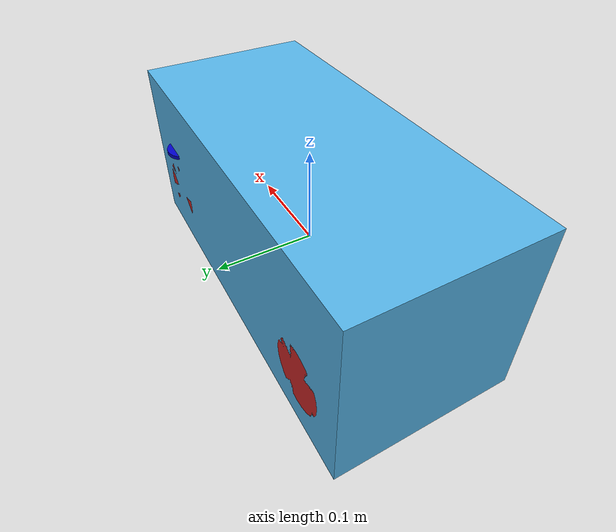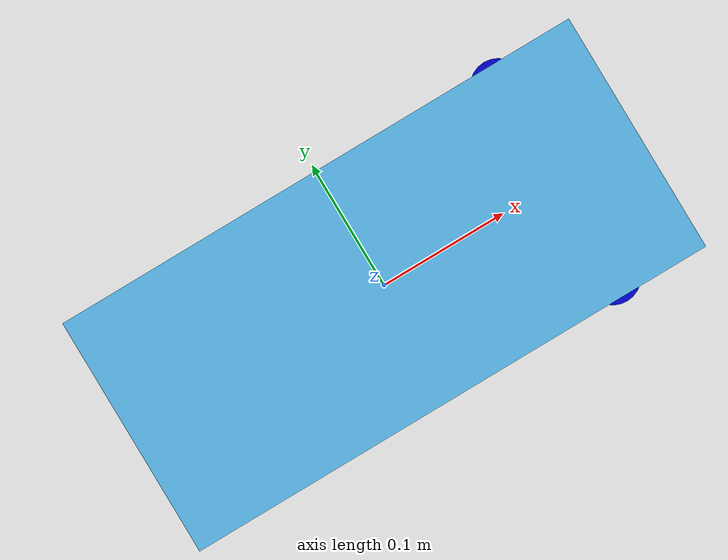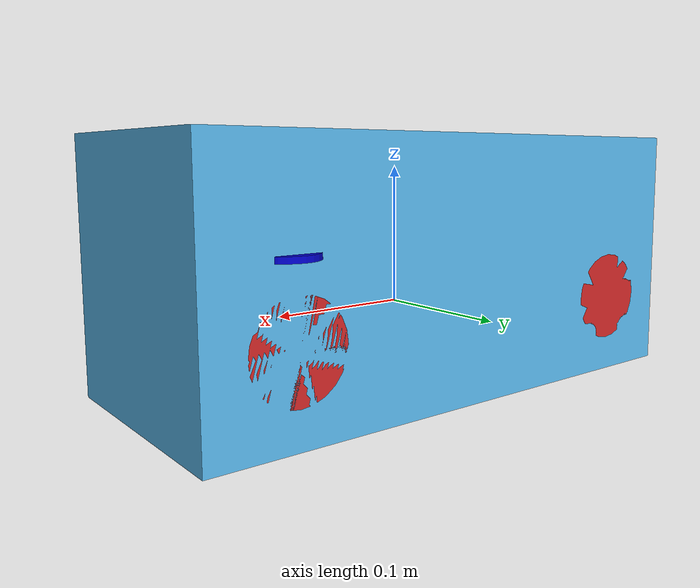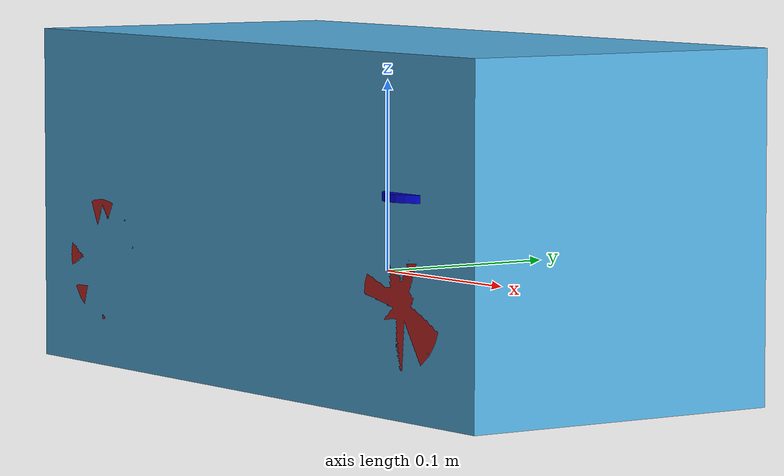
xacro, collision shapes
<?xml version="1.0"?>
<robot name="car" xmlns:xacro="http://wiki.ros.org/xacro">
  <!-- Include xacro for inertials, materials and wheels -->
  <xacro:include filename="$(find robot_description)/urdf/wheel.xacro"/>
  <xacro:include filename="$(find robot_description)/urdf/car_gazebo.xacro" />

  <xacro:property name="robot_namespace" value="/car"/>

  <!-- Math constants -->
  <xacro:property name="deg_to_rad" value="0.01745329251994329577"/>

  <!-- Robot dimensions -->
  <xacro:property name="car_length" value="0.4" />
  <xacro:property name="car_width" value="0.18" />
  <xacro:property name="car_height" value="0.18" />
  <xacro:property name="car_mass" value="2" />

  <!-- Wheel link dimensions -->
  <xacro:property name="wheel_radius" value="0.0325" />
  <xacro:property name="wheel_thickness" value="0.025" />
  <xacro:property name="wheel_mass" value="0.00355" />

  <!-- Steering link dimensions -->
  <xacro:property name="steer_radius" value="0.02" />
  <xacro:property name="steer_thickness" value="0.004" />
  <xacro:property name="steer_mass" value="0.0008" />

  <!-- Axle positions -->
  <xacro:property name="axle_offset" value="0.14" />
  <xacro:property name="steer_offset" value="0.02" />

  <xacro:macro name="dummy_visual">
    <visual>
      <geometry>
        <box size =".001 .001 .001"/>
      </geometry>
      <xacro:default_origin />
    </visual>
  </xacro:macro>

  <xacro:macro name="default_origin">
       <origin xyz="0 0 0" rpy="0 0 0"/>
  </xacro:macro>

  <!-- Base link -->
  <link name="base_link">
    <collision>
        <xacro:default_origin />
        <geometry>
            <box size="0.001 0.001 0.001"/>
        </geometry>
    </collision>

    <xacro:dummy_visual />
  </link>

  <link name="body">
    <inertial>
      <origin xyz="0.7 0 0.043" rpy="0 0 0"/>
      <mass value="${car_mass}" />
      <inertia ixx="0.0332083" ixy="0.0" ixz="0.0" iyy="0.01302083" iyz="0.0" izz="0.03685416"/>
    </inertial>

    <collision>
        <xacro:default_origin />
        <geometry>
            <box size="${car_length} ${car_width} ${car_height}"/>
        </geometry>
    </collision>

    <visual>
      <geometry>
        <!--Dimensions: 37x20xheight   height may very depending on components, should be ~20cm-->
        <mesh filename="package://robot_description/models/car_robot/meshes/car.dae"/>
      </geometry>
      <xacro:default_origin />
    </visual>
  </link>

  <joint name="base_link_to_body" type="fixed">
    <parent link="base_link"/>
    <child link="body"/>
    <origin xyz="0 0 ${wheel_radius}"/>
    <axis   xyz="0 1 0"/>
  </joint>

  <!-- Front steer and rear wheel joints required for ackermann_steering_controller -->
  <xacro:front_steer
    name="front"
    parent="base"
    steer_radius="${steer_radius}"
    steer_thickness="${steer_thickness}"
    steer_mass="${steer_mass}"
    axle_offset="${axle_offset}"
    steer_height="${wheel_radius+steer_offset}">
  </xacro:front_steer>

  <!-- Steerable front side wheels -->
  <xacro:front_wheel_lr
    name="front_right"
    parent="base"
    reflect="-1"
    wheel_radius="${wheel_radius}"
    wheel_thickness="${wheel_thickness}"
    wheel_mass="${wheel_mass}"
    wheel_is_right="1"
    steer_radius="${steer_radius}"
    steer_thickness="${steer_thickness}"
    steer_mass="${steer_mass}"
    car_length="${car_length}"
    car_width="${car_width}"
    axle_offset="${axle_offset}"
    steer_height="${wheel_radius+steer_offset}">
  </xacro:front_wheel_lr>
  <xacro:front_wheel_lr
    name="front_left"
    parent="base"
    reflect="1"
    wheel_radius="${wheel_radius}"
    wheel_thickness="${wheel_thickness}"
    wheel_mass="${wheel_mass}"
    wheel_is_right="0"
    steer_radius="${steer_radius}"
    steer_thickness="${steer_thickness}"
    steer_mass="${steer_mass}"
    car_length="${car_length}"
    car_width="${car_width}"
    axle_offset="${axle_offset}"
    steer_height="${wheel_radius+steer_offset}">
  </xacro:front_wheel_lr>

  <!-- Rear side wheels -->
  <xacro:rear_wheel_lr
    name="rear_right"
    parent="base"
    wheel_radius="${wheel_radius}"
    wheel_thickness="${wheel_thickness}"
    wheel_mass="${wheel_mass}"
    wheel_is_right="1">
    <origin xyz="${-axle_offset} ${-car_width/2+wheel_thickness/2} 0" rpy="${-90 * deg_to_rad} 0 0"/>
  </xacro:rear_wheel_lr>
  <xacro:rear_wheel_lr
    name="rear_left"
    parent="base"
    wheel_radius="${wheel_radius}"
    wheel_thickness="${wheel_thickness}"
    wheel_mass="${wheel_mass}"
    wheel_is_right="0">
    <origin xyz="${-axle_offset} ${+car_width/2-wheel_thickness/2} 0" rpy="${-90 * deg_to_rad} 0 0"/>
  </xacro:rear_wheel_lr>

  <!-- rear drive wheel -->
  <xacro:rear_wheel
    name="rear"
    parent="base"
    wheel_radius="${wheel_radius/4}"
    wheel_thickness="${wheel_thickness/2}"
    wheel_mass="${wheel_mass/32}">
    <origin xyz="${-axle_offset} 0 0" rpy="${-90 * deg_to_rad} 0 0"/>
  </xacro:rear_wheel>

  <!-- Colour -->
  <gazebo reference="base_link">
    <material>Gazebo/Green</material>
  </gazebo>

</robot>

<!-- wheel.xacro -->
<robot name="wheel" xmlns:xacro="http://wiki.ros.org/xacro">
  <!-- Include xacro for materials and inertials -->
  <xacro:include filename="$(find robot_description)/urdf/materials.xacro"/>
  <xacro:include filename="$(find robot_description)/urdf/inertials.xacro"/>

  <!-- Math constants -->
  <xacro:property name="deg_to_rad" value="0.01745329251994329577"/>

  <!-- Properties -->
  <xacro:property name="steer_effort" value="10.0"/>
  <xacro:property name="steer_velocity" value="5.0"/>
  <xacro:property name="steer_limit_deg" value="45.0"/>

  <!-- Wheel visualization macro -->
  <xacro:macro name="wheel_visual" params="roll">
    <visual>
      <geometry>
        <mesh filename="package://robot_description/models/car_robot/meshes/wheel.dae"/>
      </geometry>
      <origin xyz="0 0 0" rpy="${roll} 0 0"/>
    </visual>
  </xacro:macro>

  <!-- Steering wheel -->
  <xacro:macro name="front_steer"
    params="
      name
      parent
      steer_radius
      steer_thickness
      steer_mass
      axle_offset
      steer_height">
    <link name="${name}_steer_link">
      <visual>
        <origin xyz="0 0 0" rpy="0 0 0"/>
        <geometry>
          <cylinder radius="${steer_radius}" length="${steer_thickness}"/>
        </geometry>
        <material name="steering_wheel" />
      </visual>
      <collision>
        <origin xyz="0 0 0" rpy="0 0 0"/>
        <geometry>
          <cylinder radius="${steer_radius}" length="${steer_thickness}"/>
        </geometry>
      </collision>
      <xacro:solid_cylinder_inertial
          rpy="0 0 0" xyz="0 0 0"
          mass="${steer_mass}"
          radius="${steer_radius}" length="${steer_thickness}" />
    </link>

    <joint name="${name}_steer_joint" type="revolute">
      <parent link="${parent}_link"/>
      <child link="${name}_steer_link"/>
      <origin xyz="${axle_offset} 0 ${steer_height}" rpy="0 0 0"/>
      <axis xyz="0 0 1"/>
      <limit effort="${steer_effort}"
             lower="${-180.0 * deg_to_rad}" upper="${180.0 * deg_to_rad}"
             velocity="${steer_velocity}"/>
    </joint>

    <transmission name="${name}_steer_joint_trans">
      <type>transmission_interface/SimpleTransmission</type>
      <actuator name="${name}_steer_joint_motor">
        <mechanicalReduction>1</mechanicalReduction>
        <hardwareInterface>hardware_interface/PositionJointInterface</hardwareInterface>
      </actuator>
      <joint name="${name}_steer_joint">
        <hardwareInterface>hardware_interface/PositionJointInterface</hardwareInterface>
      </joint>
    </transmission>

    <gazebo reference="${name}_steer_link">
      <material>Gazebo/Yellow</material>
    </gazebo>
  </xacro:macro>

  <!-- STEERING -->

  <!-- Car steering model front (steerable) wheel links (left/right) -->
  <xacro:macro name="front_wheel_lr"
    params="
      name
      parent
      reflect
      wheel_radius
      wheel_thickness
      wheel_mass
      wheel_is_right
      steer_radius
      steer_thickness
      steer_mass
      car_length
      car_width
      axle_offset
      steer_height">
    <link name="${name}_steer_link">
      <visual>
        <origin xyz="0 0 0" rpy="0 0 0"/>
        <geometry>
          <cylinder radius="${steer_radius}" length="${steer_thickness}"/>
        </geometry>
        <material name="blue" />
      </visual>
      <collision>
        <origin xyz="0 0 0" rpy="0 0 0"/>
        <geometry>
          <cylinder radius="${steer_radius}" length="${steer_thickness}"/>
        </geometry>
      </collision>
      <xacro:solid_cylinder_inertial
          rpy="0 0 0" xyz="0 0 0"
          mass="${steer_mass}"
          radius="${steer_radius}" length="${steer_thickness}" />
    </link>

    <joint name="${name}_steer_joint" type="revolute">
      <parent link="${parent}_link"/>
      <child link="${name}_steer_link"/>
      <origin xyz="${axle_offset} ${reflect*(car_width/2-wheel_thickness/2)} ${steer_height}" rpy="0 0 0"/>
      <axis xyz="0 0 1"/>
      <limit effort="${steer_effort}"
             lower="${steer_limit_deg * deg_to_rad * -1.0}" upper="${steer_limit_deg * deg_to_rad}"
             velocity="${steer_velocity}"/>
    </joint>

    <link name="${name}_wheel_link">
      <xacro:wheel_visual roll="${wheel_is_right*180*deg_to_rad}"/>
      <collision>
        <origin xyz="0 0 0" rpy="${wheel_is_right*180*deg_to_rad} 0 0"/>
        <geometry>
          <cylinder radius="${wheel_radius}" length="${wheel_thickness}"/>
        </geometry>
      </collision>
      <xacro:solid_cylinder_inertial
          rpy="${wheel_is_right*180*deg_to_rad} 0 0" xyz="0 0 0"
          mass="${wheel_mass}"
          radius="${wheel_radius}" length="${wheel_thickness}" />
    </link>

    <joint name="${name}_wheel_joint" type="continuous">
      <parent link="${name}_steer_link"/>
      <child link="${name}_wheel_link"/>
      <origin xyz="0 0 ${-steer_height}" rpy="${-90 * deg_to_rad} 0 0"/>
      <axis xyz="0 0 1"/>
    </joint>

    <transmission name="${name}_steer_joint_trans">
      <type>transmission_interface/SimpleTransmission</type>
      <actuator name="${name}_steer_joint_motor">
        <mechanicalReduction>1</mechanicalReduction>
        <hardwareInterface>hardware_interface/PositionJointInterface</hardwareInterface>
      </actuator>
      <joint name="${name}_steer_joint">
        <hardwareInterface>hardware_interface/PositionJointInterface</hardwareInterface>
      </joint>
    </transmission>

    <transmission name="${name}_wheel_joint_trans">
      <type>transmission_interface/SimpleTransmission</type>
      <actuator name="${name}_wheel_joint_motor">
        <mechanicalReduction>1</mechanicalReduction>
        <hardwareInterface>hardware_interface/VelocityJointInterface</hardwareInterface>
      </actuator>
      <joint name="${name}_wheel_joint">
        <hardwareInterface>hardware_interface/VelocityJointInterface</hardwareInterface>
      </joint>
    </transmission>

    <gazebo reference="${name}_steer_link">
      <material>Gazebo/Blue</material>
    </gazebo>

    <gazebo reference="${name}_wheel_link">
      <material>Gazebo/Red</material>
    </gazebo>
  </xacro:macro>

  <!-- Car steering model rear wheel links (left/right) -->
  <xacro:macro name="rear_wheel_lr"
    params="
      name
      parent
      wheel_radius
      wheel_thickness
      wheel_mass
      wheel_is_right
      *origin">
    <link name="${name}_wheel_link">
      <xacro:wheel_visual roll="${wheel_is_right*180*deg_to_rad}"/>
      <collision>
        <origin xyz="0 0 0" rpy="${wheel_is_right*180*deg_to_rad} 0 0"/>
        <geometry>
          <cylinder radius="${wheel_radius}" length="${wheel_thickness}"/>
        </geometry>
      </collision>
      <xacro:solid_cylinder_inertial
          rpy="${wheel_is_right*180*deg_to_rad} 0 0" xyz="0 0 0"
          mass="${wheel_mass}"
          radius="${wheel_radius}" length="${wheel_thickness}" />
    </link>

    <joint name="${name}_wheel_joint" type="continuous">
      <parent link="${parent}_link"/>
      <child link="${name}_wheel_link"/>
      <xacro:insert_block name="origin"/>
      <axis xyz="0 0 1"/>
    </joint>

    <transmission name="${name}_wheel_joint_trans">
      <type>transmission_interface/SimpleTransmission</type>
      <actuator name="${name}_wheel_joint_motor">
        <mechanicalReduction>1</mechanicalReduction>
        <hardwareInterface>hardware_interface/VelocityJointInterface</hardwareInterface>
      </actuator>
      <joint name="${name}_wheel_joint">
        <hardwareInterface>hardware_interface/VelocityJointInterface</hardwareInterface>
      </joint>
    </transmission>

    <gazebo reference="${name}_wheel_link">
      <material>Gazebo/Red</material>
    </gazebo>
  </xacro:macro>

  <!-- DRIVE -->

  <!-- rear drive wheel -->
  <xacro:macro name="rear_wheel"
    params="
      name
      parent
      wheel_radius
      wheel_thickness
      wheel_mass
      *origin">
    <link name="${name}_wheel_link">
      <visual>
        <origin xyz="0 0 0" rpy="0 0 0"/>
        <geometry>
          <cylinder radius="${wheel_radius}" length="${wheel_thickness}"/>
        </geometry>
        <material name="yellow" />
      </visual>
      <collision>
        <origin xyz="0 0 0" rpy="0 0 0"/>
        <geometry>
          <cylinder radius="${wheel_radius}" length="${wheel_thickness}"/>
        </geometry>
      </collision>
      <xacro:solid_cylinder_inertial
          rpy="0 0 0" xyz="0 0 0"
          mass="${wheel_mass}"
          radius="${wheel_radius}" length="${wheel_thickness}" />
    </link>

    <joint name="${name}_wheel_joint" type="continuous">
      <parent link="${parent}_link"/>
      <child link="${name}_wheel_link"/>
      <xacro:insert_block name="origin"/>
      <axis xyz="0 0 1"/>
    </joint>

    <transmission name="${name}_wheel_joint_trans">
      <type>transmission_interface/SimpleTransmission</type>
      <actuator name="${name}_wheel_joint_motor">
        <mechanicalReduction>1</mechanicalReduction>
        <hardwareInterface>hardware_interface/VelocityJointInterface</hardwareInterface>
      </actuator>
      <joint name="${name}_wheel_joint">
        <hardwareInterface>hardware_interface/VelocityJointInterface</hardwareInterface>
      </joint>
    </transmission>

    <gazebo reference="${name}_wheel_link">
      <material>Gazebo/Yellow</material>
    </gazebo>
  </xacro:macro>

  <!-- front drive wheel (passive - no transmission) -->
  <xacro:macro name="front_wheel"
    params="
      name
      parent
      wheel_radius
      wheel_thickness
      wheel_mass
      *origin">
    <link name="${name}_wheel_link">
      <visual>
        <origin xyz="0 0 0" rpy="0 0 0"/>
        <geometry>
          <cylinder radius="${wheel_radius}" length="${wheel_thickness}"/>
        </geometry>
        <material name="yellow" />
      </visual>
      <collision>
        <origin xyz="0 0 0" rpy="0 0 0"/>
        <geometry>
          <cylinder radius="${wheel_radius}" length="${wheel_thickness}"/>
        </geometry>
      </collision>
      <xacro:solid_cylinder_inertial
          rpy="0 0 0" xyz="0 0 0"
          mass="${wheel_mass}"
          radius="${wheel_radius}" length="${wheel_thickness}" />
    </link>

    <joint name="${name}_wheel_joint" type="continuous">
      <parent link="${parent}_link"/>
      <child link="${name}_wheel_link"/>
      <xacro:insert_block name="origin"/>
      <axis xyz="0 0 1"/>
    </joint>

    <gazebo reference="${name}_wheel_link">
      <material>Gazebo/Yellow</material>
    </gazebo>

    <gazebo reference="${name}_wheel_joint">
      <provideFeedback>true</provideFeedback>
    </gazebo>
  </xacro:macro>

</robot>

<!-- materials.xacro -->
<!--  xacro macros for robot materials.
 -->
<robot name="materials" xmlns:xacro="http://wiki.ros.org/xacro">
   <material name="red">
        <color rgba="0.8 0 0 1"/>
    </material>

    <material name="green">
        <color rgba="0 0.8 0 1"/>
    </material>

    <material name="blue">
        <color rgba="0 0 0.8 1"/>
    </material>

    <material name="yellow">
        <color rgba="0.8 0.8 0 1"/>
    </material>

    <material name="orange">
        <color rgba="0.8 0.25 0 1"/>
    </material>

    <material name="black">
        <color rgba="0 0 0 1"/>
    </material>

    <material name="dark_gray">
        <color rgba="0.5 0.5 0.5 1"/>
    </material>

    <material name="gray">
        <color rgba="0.753 0.753 0.753 1"/>
    </material>

    <material name="silver">
        <color rgba="0.88 0.88 0.88 1"/>
    </material>

    <material name="white">
        <color rgba="1 1 1 1"/>
    </material>

    <material name="steering_wheel">
        <color rgba="0 0 0 0.4"/>
    </material>
</robot>

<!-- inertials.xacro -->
<!--  xacro macros for inertials.
    Define xacro macros for math constants and inertials:

    - solid cuboid
    - solid cylinder
    - null (a placeholder inertial for logical link elements)
 -->
<robot name="inertials" xmlns:xacro="http://wiki.ros.org/xacro">

    <!-- Math constants -->
    <xacro:property name="math_pi"        value="3.141592653589793" />
    <xacro:property name="math_pi_over_2" value="1.5707963267948966" />
    <xacro:property name="math_pi_over_4" value="0.785398163397448" />

    <!-- Inertial for solid cuboid with dimensions x y z  -->
    <xacro:macro name="solid_cuboid_inertial" params="rpy xyz mass x y z">
        <inertial>
            <origin rpy="${rpy}" xyz="${xyz}"/>
            <mass value="${mass}" />
            <inertia
                ixx="${mass * (y * y + z * z) / 12.0}" ixy="0.0" ixz="0.0"
                iyy="${mass * (x * x + z * z) / 12.0}" iyz="0.0"
                izz="${mass * (x * x + y * y) / 12.0}" />
        </inertial>
    </xacro:macro>

    <!-- Inertial for solid cylinder with radius and length aligned to z-axis  -->
    <xacro:macro name="solid_cylinder_inertial" params="rpy xyz mass radius length">
        <inertial>
            <origin rpy="${rpy}" xyz="${xyz}"/>
            <mass value="${mass}" />
            <inertia
                ixx="${mass * (3.0 * radius * radius + length * length) / 12.0}" ixy="0.0" ixz="0.0"
                iyy="${mass * (3.0 * radius * radius + length * length) / 12.0}" iyz="0.0"
                izz="${mass * (radius * radius) / 2.0}" />
        </inertial>
    </xacro:macro>

    <!-- A null inertial - used in placeholder links to esure the model will work in Gazebo -->
    <xacro:macro name="null_inertial">
        <inertial>
            <mass value="0.001"/>
            <inertia ixx="0.001" ixy="0" ixz="0" iyy="0.001" iyz="0" izz="0.001"/>
        </inertial>
    </xacro:macro>
</robot>
